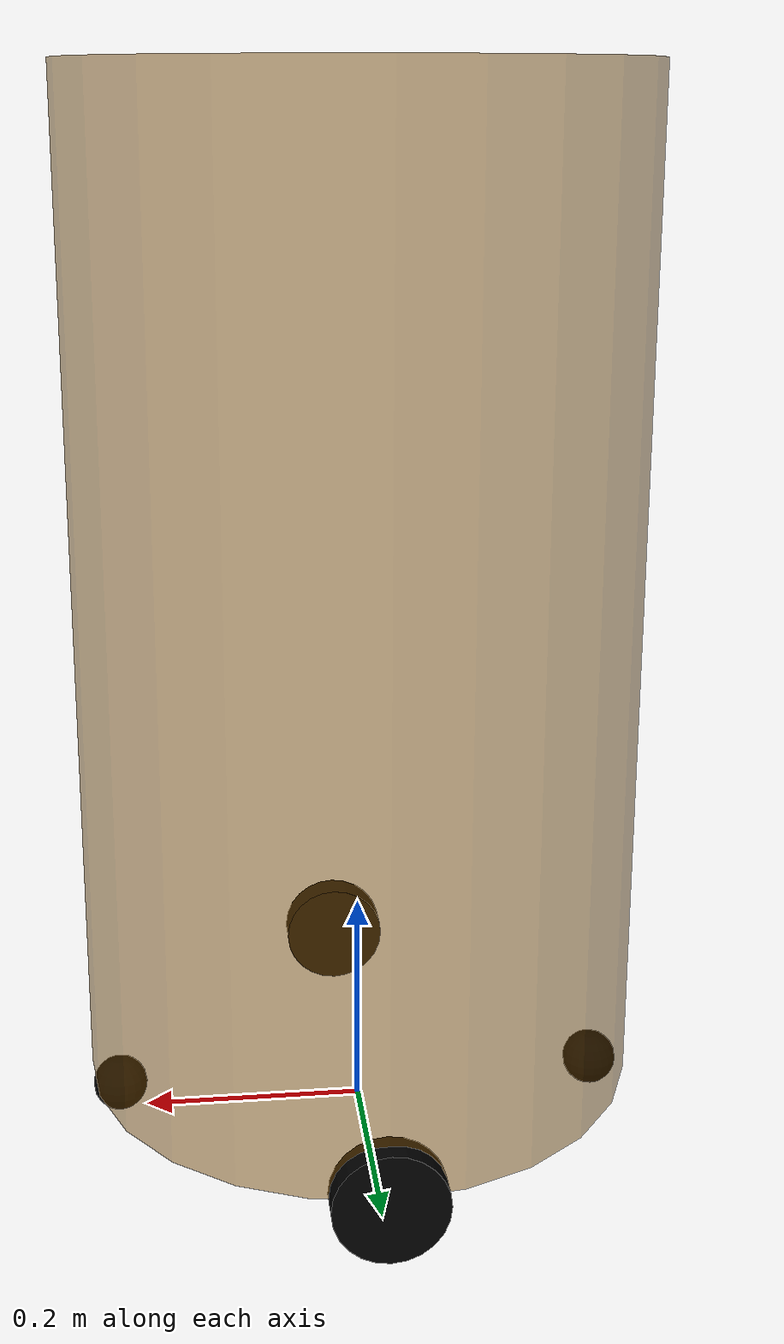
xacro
<robot name="my_base" xmlns:xacro="http://www.ros.org/wiki/xacro">
    <!-- 封装变量、常量 -->
    <xacro:property name="PI" value="3.141"/>

    <!-- Gazebo插件 -->
    <gazebo>
        <plugin name="gazebo_ros_control" filename="libgazebo_ros_control.so">
            <robotNamespace>/</robotNamespace>
        </plugin>
    </gazebo>

    <!-- 底盘属性 -->
    <xacro:property name="base_footprint_radius" value="0.001" />
    <xacro:property name="base_link_radius" value="0.25" />
    <xacro:property name="base_link_length" value="0.9" />
    <xacro:property name="earth_space" value="0.05" />

    <!-- 底盘 -->
    <link name="base_footprint">
      <visual>
        <geometry>
          <sphere radius="${base_footprint_radius}" />
        </geometry>
      </visual>
      <!-- 添加碰撞几何体 -->
      <collision>
        <geometry>
          <sphere radius="${base_footprint_radius}" />
        </geometry>
      </collision>
      <inertial>
        <origin xyz="0 0 0" />
        <mass value="0.001" />
        <inertia ixx="0.000001" ixy="0" ixz="0" iyy="0.000001" iyz="0" izz="0.000001" />
      </inertial>
    </link>

    <link name="base_link">
      <visual>
        <geometry>
          <cylinder radius="${base_link_radius}" length="${base_link_length}" />
        </geometry>
        <origin xyz="0 0 0" rpy="0 0 0" />
        <material name="yellow">
          <color rgba="0.5 0.3 0.0 0.5" />
        </material>
      </visual>
      <!-- 添加碰撞几何体 -->
      <collision>
        <geometry>
          <cylinder radius="${base_link_radius}" length="${base_link_length}" />
        </geometry>
      </collision>
      <inertial>
        <origin xyz="0 0 0" />
        <mass value="1.0" />
        <inertia ixx="0.1" ixy="0" ixz="0" iyy="0.1" iyz="0" izz="0.05" />
      </inertial>
    </link>

    <joint name="base_link2base_footprint" type="fixed">
      <parent link="base_footprint" />
      <child link="base_link" />
      <origin xyz="0 0 ${earth_space + base_link_length / 2}" />
    </joint>

    <!-- 驱动轮 -->
    <xacro:property name="wheel_radius" value="0.05" />
    <xacro:property name="wheel_length" value="0.03" />

    <xacro:macro name="add_wheels" params="name flag">
      <link name="${name}_wheel">
        <visual>
          <geometry>
            <cylinder radius="${wheel_radius}" length="${wheel_length}" />
          </geometry>
          <origin xyz="0.0 0.0 0.0" rpy="${PI / 2} 0.0 0.0" />
          <material name="black">
            <color rgba="0.0 0.0 0.0 1.0" />
          </material>
        </visual>
        <!-- 添加碰撞几何体 -->
        <collision>
          <geometry>
            <cylinder radius="${wheel_radius}" length="${wheel_length}" />
          </geometry>
          <origin xyz="0.0 0.0 0.0" rpy="${PI / 2} 0.0 0.0" />
        </collision>
        <inertial>
          <origin xyz="0 0 0" />
          <mass value="0.1" />
          <inertia ixx="0.001" ixy="0" ixz="0" iyy="0.001" iyz="0" izz="0.001" />
        </inertial>
      </link>

      <joint name="${name}_wheel2base_link" type="continuous">
        <parent link="base_link" />
        <child link="${name}_wheel" />
        <origin xyz="0 ${flag * base_link_radius} ${-(earth_space + base_link_length / 2 - wheel_radius)}" />
        <axis xyz="0 1 0" />
      </joint>
    </xacro:macro>

    <xacro:add_wheels name="left" flag="1" />
    <xacro:add_wheels name="right" flag="-1" />

    <!-- 支撑轮 -->
    <xacro:property name="support_wheel_radius" value="0.025" />

    <xacro:macro name="add_support_wheel" params="name flag" >
      <link name="${name}_wheel">
        <visual>
            <geometry>
                <sphere radius="${support_wheel_radius}" />
            </geometry>
            <origin xyz="0 0 0" rpy="0 0 0" />
            <material name="black">
                <color rgba="0.0 0.0 0.0 1.0" />
            </material>
        </visual>
        <!-- 添加碰撞几何体 -->
        <collision>
            <geometry>
                <sphere radius="${support_wheel_radius}" />
            </geometry>
        </collision>
        <inertial>
          <origin xyz="0 0 0" />
          <mass value="0.01" />
          <inertia ixx="0.0001" ixy="0" ixz="0" iyy="0.0001" iyz="0" izz="0.0001" />
        </inertial>
      </link>

      <!-- 修正：支撑轮应该是固定关节 -->
      <joint name="${name}_wheel2base_link" type="fixed"><!-- continuous -->
          <parent link="base_link" />
          <child link="${name}_wheel" />
          <origin xyz="${flag * (base_link_radius - support_wheel_radius)} 0 ${-(base_link_length / 2 + earth_space / 2)}" />
      </joint>
    </xacro:macro>

    <xacro:add_support_wheel name="front" flag="1" />
    <xacro:add_support_wheel name="back" flag="-1" />

</robot>
